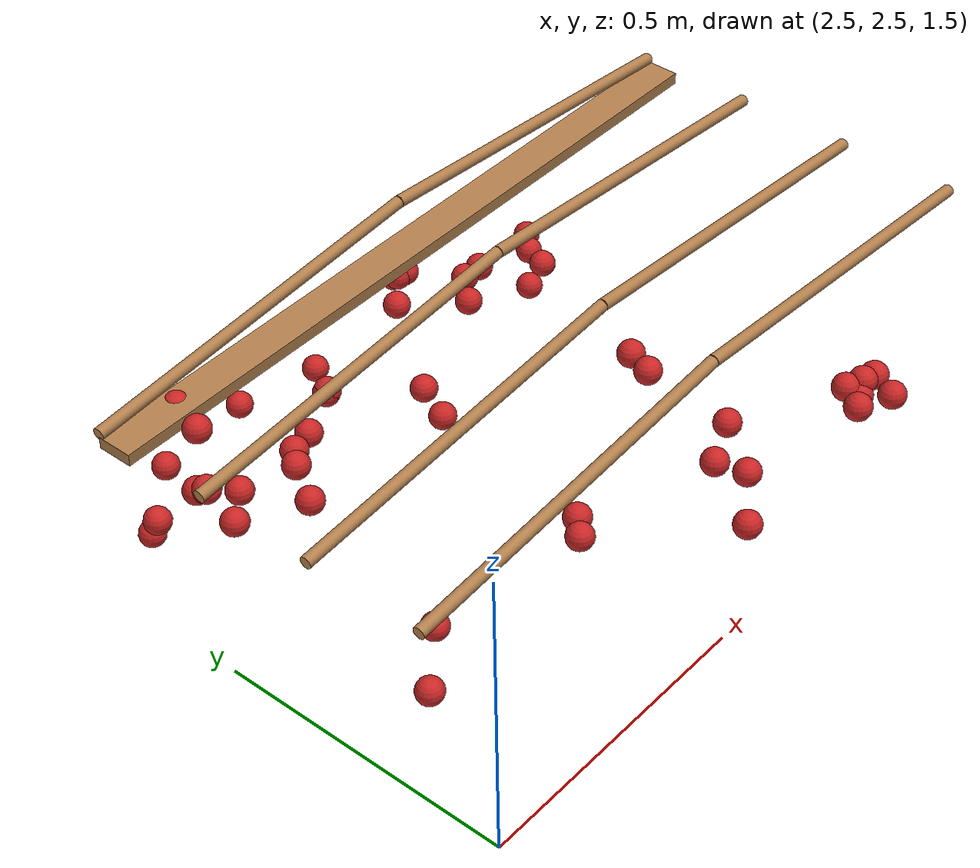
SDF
<sdf version="1.4">
 <model name="pergola">
  <link name="beam_18">
   <pose>3.125 3.2 1.81 0 0 0</pose>
   <collision name="collision"><geometry><box><size>1.25 0.06 0.02</size></box></geometry></collision>
   <visual name="visual">
    <geometry><box><size>1.25 0.06 0.02</size></box></geometry>
    <material><script><name>Gazebo/Wood</name></script></material>
   </visual>
   <inertial>
    <mass>5</mass>
    <inertia>
     <ixx>0.0016666666666666668</ixx>
     <ixy>0.0</ixy>
     <ixz>0.0</ixz>
     <iyy>0.6525416666666667</iyy>
     <iyz>0.0</iyz>
     <izz>0.6512083333333333</izz>
    </inertia>
   </inertial>
  </link>
  <link name="vine_122">
   <pose>2.8125 2.63 1.85 0 1.4909663410826592 0</pose>
   <collision name="collision">
    <geometry><cylinder><radius>0.01</radius><length>0.6269968101992226</length></cylinder></geometry>
   </collision>
   <visual name="visual">
    <geometry><cylinder><radius>0.01</radius><length>0.6269968101992226</length></cylinder></geometry>
    <material><script><name>Gazebo/WoodFloor</name></script></material>
   </visual>
   <inertial>
    <mass>5</mass>
    <inertia>
     <ixx>0.1639270833333333</ixx>
     <ixy>0.0</ixy>
     <ixz>0.0</ixz>
     <iyy>0.1639270833333333</iyy>
     <iyz>0.0</iyz>
     <izz>0.00025</izz>
    </inertia>
   </inertial>
  </link>
  <link name="vine_123">
   <pose>3.4375 2.63 1.85 0 -1.4909663410826592 0</pose>
   <collision name="collision">
    <geometry><cylinder><radius>0.01</radius><length>0.6269968101992226</length></cylinder></geometry>
   </collision>
   <visual name="visual">
    <geometry><cylinder><radius>0.01</radius><length>0.6269968101992226</length></cylinder></geometry>
    <material><script><name>Gazebo/WoodFloor</name></script></material>
   </visual>
   <inertial>
    <mass>5</mass>
    <inertia>
     <ixx>0.1639270833333333</ixx>
     <ixy>0.0</ixy>
     <ixz>0.0</ixz>
     <iyy>0.1639270833333333</iyy>
     <iyz>0.0</iyz>
     <izz>0.00025</izz>
    </inertia>
   </inertial>
  </link>
  <link name="vine_124">
   <pose>2.8125 2.83 1.85 0 1.4909663410826592 0</pose>
   <collision name="collision">
    <geometry><cylinder><radius>0.01</radius><length>0.6269968101992226</length></cylinder></geometry>
   </collision>
   <visual name="visual">
    <geometry><cylinder><radius>0.01</radius><length>0.6269968101992226</length></cylinder></geometry>
    <material><script><name>Gazebo/WoodFloor</name></script></material>
   </visual>
   <inertial>
    <mass>5</mass>
    <inertia>
     <ixx>0.1639270833333333</ixx>
     <ixy>0.0</ixy>
     <ixz>0.0</ixz>
     <iyy>0.1639270833333333</iyy>
     <iyz>0.0</iyz>
     <izz>0.00025</izz>
    </inertia>
   </inertial>
  </link>
  <link name="vine_125">
   <pose>3.4375 2.83 1.85 0 -1.4909663410826592 0</pose>
   <collision name="collision">
    <geometry><cylinder><radius>0.01</radius><length>0.6269968101992226</length></cylinder></geometry>
   </collision>
   <visual name="visual">
    <geometry><cylinder><radius>0.01</radius><length>0.6269968101992226</length></cylinder></geometry>
    <material><script><name>Gazebo/WoodFloor</name></script></material>
   </visual>
   <inertial>
    <mass>5</mass>
    <inertia>
     <ixx>0.1639270833333333</ixx>
     <ixy>0.0</ixy>
     <ixz>0.0</ixz>
     <iyy>0.1639270833333333</iyy>
     <iyz>0.0</iyz>
     <izz>0.00025</izz>
    </inertia>
   </inertial>
  </link>
  <link name="vine_126">
   <pose>2.8125 3.03 1.85 0 1.4909663410826592 0</pose>
   <collision name="collision">
    <geometry><cylinder><radius>0.01</radius><length>0.6269968101992226</length></cylinder></geometry>
   </collision>
   <visual name="visual">
    <geometry><cylinder><radius>0.01</radius><length>0.6269968101992226</length></cylinder></geometry>
    <material><script><name>Gazebo/WoodFloor</name></script></material>
   </visual>
   <inertial>
    <mass>5</mass>
    <inertia>
     <ixx>0.1639270833333333</ixx>
     <ixy>0.0</ixy>
     <ixz>0.0</ixz>
     <iyy>0.1639270833333333</iyy>
     <iyz>0.0</iyz>
     <izz>0.00025</izz>
    </inertia>
   </inertial>
  </link>
  <link name="vine_127">
   <pose>3.4375 3.03 1.85 0 -1.4909663410826592 0</pose>
   <collision name="collision">
    <geometry><cylinder><radius>0.01</radius><length>0.6269968101992226</length></cylinder></geometry>
   </collision>
   <visual name="visual">
    <geometry><cylinder><radius>0.01</radius><length>0.6269968101992226</length></cylinder></geometry>
    <material><script><name>Gazebo/WoodFloor</name></script></material>
   </visual>
   <inertial>
    <mass>5</mass>
    <inertia>
     <ixx>0.1639270833333333</ixx>
     <ixy>0.0</ixy>
     <ixz>0.0</ixz>
     <iyy>0.1639270833333333</iyy>
     <iyz>0.0</iyz>
     <izz>0.00025</izz>
    </inertia>
   </inertial>
  </link>
  <link name="vine_128">
   <pose>2.8125 3.23 1.85 0 1.4909663410826592 0</pose>
   <collision name="collision">
    <geometry><cylinder><radius>0.01</radius><length>0.6269968101992226</length></cylinder></geometry>
   </collision>
   <visual name="visual">
    <geometry><cylinder><radius>0.01</radius><length>0.6269968101992226</length></cylinder></geometry>
    <material><script><name>Gazebo/WoodFloor</name></script></material>
   </visual>
   <inertial>
    <mass>5</mass>
    <inertia>
     <ixx>0.1639270833333333</ixx>
     <ixy>0.0</ixy>
     <ixz>0.0</ixz>
     <iyy>0.1639270833333333</iyy>
     <iyz>0.0</iyz>
     <izz>0.00025</izz>
    </inertia>
   </inertial>
  </link>
  <link name="vine_129">
   <pose>3.4375 3.23 1.85 0 -1.4909663410826592 0</pose>
   <collision name="collision">
    <geometry><cylinder><radius>0.01</radius><length>0.6269968101992226</length></cylinder></geometry>
   </collision>
   <visual name="visual">
    <geometry><cylinder><radius>0.01</radius><length>0.6269968101992226</length></cylinder></geometry>
    <material><script><name>Gazebo/WoodFloor</name></script></material>
   </visual>
   <inertial>
    <mass>5</mass>
    <inertia>
     <ixx>0.1639270833333333</ixx>
     <ixy>0.0</ixy>
     <ixz>0.0</ixz>
     <iyy>0.1639270833333333</iyy>
     <iyz>0.0</iyz>
     <izz>0.00025</izz>
    </inertia>
   </inertial>
  </link>
  <link name="fruit_32">
   <pose>2.808159609067501 3.1338102263515895 1.6721600323383448 0 0 0</pose>
   <collision name="fruit_collision_32"><geometry><sphere><radius>0.022</radius></sphere></geometry></collision>
   <visual name="visual">
    <geometry><sphere><radius>0.022</radius></sphere></geometry>
    <material><script><name>Gazebo/Red</name></script></material>
   </visual>
   <inertial>
    <mass>0.05</mass>
    <inertia>
     <ixx>9.679999999999999e-06</ixx>
     <ixy>0.0</ixy>
     <ixz>0.0</ixz>
     <iyy>9.679999999999999e-06</iyy>
     <iyz>0.0</iyz>
     <izz>9.679999999999999e-06</izz>
    </inertia>
   </inertial>
   <sensor name="fruit_contact_32" type="contact">
    <plugin name="contact_plugin_32" filename="libcontact_plugin.so"/>
    <contact><collision>fruit_collision_32</collision><topic>fruit_contact_topic_32</topic></contact>
   </sensor>
  </link>
  <link name="fruit_89">
   <pose>3.119359254811818 3.2397912579139376 1.6721336779180653 0 0 0</pose>
   <collision name="fruit_collision_89"><geometry><sphere><radius>0.022</radius></sphere></geometry></collision>
   <visual name="visual">
    <geometry><sphere><radius>0.022</radius></sphere></geometry>
    <material><script><name>Gazebo/Red</name></script></material>
   </visual>
   <inertial>
    <mass>0.05</mass>
    <inertia>
     <ixx>9.679999999999999e-06</ixx>
     <ixy>0.0</ixy>
     <ixz>0.0</ixz>
     <iyy>9.679999999999999e-06</iyy>
     <iyz>0.0</iyz>
     <izz>9.679999999999999e-06</izz>
    </inertia>
   </inertial>
   <sensor name="fruit_contact_89" type="contact">
    <plugin name="contact_plugin_89" filename="libcontact_plugin.so"/>
    <contact><collision>fruit_collision_89</collision><topic>fruit_contact_topic_89</topic></contact>
   </sensor>
  </link>
  <link name="fruit_124">
   <pose>2.577887093972823 2.6891533017755216 1.610505593274216 0 0 0</pose>
   <collision name="fruit_collision_124"><geometry><sphere><radius>0.022</radius></sphere></geometry></collision>
   <visual name="visual">
    <geometry><sphere><radius>0.022</radius></sphere></geometry>
    <material><script><name>Gazebo/Red</name></script></material>
   </visual>
   <inertial>
    <mass>0.05</mass>
    <inertia>
     <ixx>9.679999999999999e-06</ixx>
     <ixy>0.0</ixy>
     <ixz>0.0</ixz>
     <iyy>9.679999999999999e-06</iyy>
     <iyz>0.0</iyz>
     <izz>9.679999999999999e-06</izz>
    </inertia>
   </inertial>
   <sensor name="fruit_contact_124" type="contact">
    <plugin name="contact_plugin_124" filename="libcontact_plugin.so"/>
    <contact><collision>fruit_collision_124</collision><topic>fruit_contact_topic_124</topic></contact>
   </sensor>
  </link>
  <link name="fruit_126">
   <pose>3.2724468561933024 2.4734322153932156 1.7780157370813416 0 0 0</pose>
   <collision name="fruit_collision_126"><geometry><sphere><radius>0.022</radius></sphere></geometry></collision>
   <visual name="visual">
    <geometry><sphere><radius>0.022</radius></sphere></geometry>
    <material><script><name>Gazebo/Red</name></script></material>
   </visual>
   <inertial>
    <mass>0.05</mass>
    <inertia>
     <ixx>9.679999999999999e-06</ixx>
     <ixy>0.0</ixy>
     <ixz>0.0</ixz>
     <iyy>9.679999999999999e-06</iyy>
     <iyz>0.0</iyz>
     <izz>9.679999999999999e-06</izz>
    </inertia>
   </inertial>
   <sensor name="fruit_contact_126" type="contact">
    <plugin name="contact_plugin_126" filename="libcontact_plugin.so"/>
    <contact><collision>fruit_collision_126</collision><topic>fruit_contact_topic_126</topic></contact>
   </sensor>
  </link>
  <link name="fruit_164">
   <pose>2.8742956785888296 3.35920691394664 1.5603556644123178 0 0 0</pose>
   <collision name="fruit_collision_164"><geometry><sphere><radius>0.022</radius></sphere></geometry></collision>
   <visual name="visual">
    <geometry><sphere><radius>0.022</radius></sphere></geometry>
    <material><script><name>Gazebo/Red</name></script></material>
   </visual>
   <inertial>
    <mass>0.05</mass>
    <inertia>
     <ixx>9.679999999999999e-06</ixx>
     <ixy>0.0</ixy>
     <ixz>0.0</ixz>
     <iyy>9.679999999999999e-06</iyy>
     <iyz>0.0</iyz>
     <izz>9.679999999999999e-06</izz>
    </inertia>
   </inertial>
   <sensor name="fruit_contact_164" type="contact">
    <plugin name="contact_plugin_164" filename="libcontact_plugin.so"/>
    <contact><collision>fruit_collision_164</collision><topic>fruit_contact_topic_164</topic></contact>
   </sensor>
  </link>
  <link name="fruit_194">
   <pose>3.1401471594713857 2.754772605987494 1.7814340354698146 0 0 0</pose>
   <collision name="fruit_collision_194"><geometry><sphere><radius>0.022</radius></sphere></geometry></collision>
   <visual name="visual">
    <geometry><sphere><radius>0.022</radius></sphere></geometry>
    <material><script><name>Gazebo/Red</name></script></material>
   </visual>
   <inertial>
    <mass>0.05</mass>
    <inertia>
     <ixx>9.679999999999999e-06</ixx>
     <ixy>0.0</ixy>
     <ixz>0.0</ixz>
     <iyy>9.679999999999999e-06</iyy>
     <iyz>0.0</iyz>
     <izz>9.679999999999999e-06</izz>
    </inertia>
   </inertial>
   <sensor name="fruit_contact_194" type="contact">
    <plugin name="contact_plugin_194" filename="libcontact_plugin.so"/>
    <contact><collision>fruit_collision_194</collision><topic>fruit_contact_topic_194</topic></contact>
   </sensor>
  </link>
  <link name="fruit_196">
   <pose>2.66489645507747 2.988358592392911 1.7244490365816565 0 0 0</pose>
   <collision name="fruit_collision_196"><geometry><sphere><radius>0.022</radius></sphere></geometry></collision>
   <visual name="visual">
    <geometry><sphere><radius>0.022</radius></sphere></geometry>
    <material><script><name>Gazebo/Red</name></script></material>
   </visual>
   <inertial>
    <mass>0.05</mass>
    <inertia>
     <ixx>9.679999999999999e-06</ixx>
     <ixy>0.0</ixy>
     <ixz>0.0</ixz>
     <iyy>9.679999999999999e-06</iyy>
     <iyz>0.0</iyz>
     <izz>9.679999999999999e-06</izz>
    </inertia>
   </inertial>
   <sensor name="fruit_contact_196" type="contact">
    <plugin name="contact_plugin_196" filename="libcontact_plugin.so"/>
    <contact><collision>fruit_collision_196</collision><topic>fruit_contact_topic_196</topic></contact>
   </sensor>
  </link>
  <link name="fruit_228">
   <pose>3.03315922586035 3.347421275399543 1.539117798216016 0 0 0</pose>
   <collision name="fruit_collision_228"><geometry><sphere><radius>0.022</radius></sphere></geometry></collision>
   <visual name="visual">
    <geometry><sphere><radius>0.022</radius></sphere></geometry>
    <material><script><name>Gazebo/Red</name></script></material>
   </visual>
   <inertial>
    <mass>0.05</mass>
    <inertia>
     <ixx>9.679999999999999e-06</ixx>
     <ixy>0.0</ixy>
     <ixz>0.0</ixz>
     <iyy>9.679999999999999e-06</iyy>
     <iyz>0.0</iyz>
     <izz>9.679999999999999e-06</izz>
    </inertia>
   </inertial>
   <sensor name="fruit_contact_228" type="contact">
    <plugin name="contact_plugin_228" filename="libcontact_plugin.so"/>
    <contact><collision>fruit_collision_228</collision><topic>fruit_contact_topic_228</topic></contact>
   </sensor>
  </link>
  <link name="fruit_267">
   <pose>2.982920281288055 3.0224788994690743 1.6506593641602456 0 0 0</pose>
   <collision name="fruit_collision_267"><geometry><sphere><radius>0.022</radius></sphere></geometry></collision>
   <visual name="visual">
    <geometry><sphere><radius>0.022</radius></sphere></geometry>
    <material><script><name>Gazebo/Red</name></script></material>
   </visual>
   <inertial>
    <mass>0.05</mass>
    <inertia>
     <ixx>9.679999999999999e-06</ixx>
     <ixy>0.0</ixy>
     <ixz>0.0</ixz>
     <iyy>9.679999999999999e-06</iyy>
     <iyz>0.0</iyz>
     <izz>9.679999999999999e-06</izz>
    </inertia>
   </inertial>
   <sensor name="fruit_contact_267" type="contact">
    <plugin name="contact_plugin_267" filename="libcontact_plugin.so"/>
    <contact><collision>fruit_collision_267</collision><topic>fruit_contact_topic_267</topic></contact>
   </sensor>
  </link>
  <link name="fruit_271">
   <pose>3.249426241510122 3.370930628776585 1.5856665070053395 0 0 0</pose>
   <collision name="fruit_collision_271"><geometry><sphere><radius>0.022</radius></sphere></geometry></collision>
   <visual name="visual">
    <geometry><sphere><radius>0.022</radius></sphere></geometry>
    <material><script><name>Gazebo/Red</name></script></material>
   </visual>
   <inertial>
    <mass>0.05</mass>
    <inertia>
     <ixx>9.679999999999999e-06</ixx>
     <ixy>0.0</ixy>
     <ixz>0.0</ixz>
     <iyy>9.679999999999999e-06</iyy>
     <iyz>0.0</iyz>
     <izz>9.679999999999999e-06</izz>
    </inertia>
   </inertial>
   <sensor name="fruit_contact_271" type="contact">
    <plugin name="contact_plugin_271" filename="libcontact_plugin.so"/>
    <contact><collision>fruit_collision_271</collision><topic>fruit_contact_topic_271</topic></contact>
   </sensor>
  </link>
  <link name="fruit_294">
   <pose>3.3787664850380033 3.1828757783705837 1.583433113037131 0 0 0</pose>
   <collision name="fruit_collision_294"><geometry><sphere><radius>0.022</radius></sphere></geometry></collision>
   <visual name="visual">
    <geometry><sphere><radius>0.022</radius></sphere></geometry>
    <material><script><name>Gazebo/Red</name></script></material>
   </visual>
   <inertial>
    <mass>0.05</mass>
    <inertia>
     <ixx>9.679999999999999e-06</ixx>
     <ixy>0.0</ixy>
     <ixz>0.0</ixz>
     <iyy>9.679999999999999e-06</iyy>
     <iyz>0.0</iyz>
     <izz>9.679999999999999e-06</izz>
    </inertia>
   </inertial>
   <sensor name="fruit_contact_294" type="contact">
    <plugin name="contact_plugin_294" filename="libcontact_plugin.so"/>
    <contact><collision>fruit_collision_294</collision><topic>fruit_contact_topic_294</topic></contact>
   </sensor>
  </link>
  <link name="fruit_299">
   <pose>2.5752046906343913 3.0501656213969257 1.7110261043534212 0 0 0</pose>
   <collision name="fruit_collision_299"><geometry><sphere><radius>0.022</radius></sphere></geometry></collision>
   <visual name="visual">
    <geometry><sphere><radius>0.022</radius></sphere></geometry>
    <material><script><name>Gazebo/Red</name></script></material>
   </visual>
   <inertial>
    <mass>0.05</mass>
    <inertia>
     <ixx>9.679999999999999e-06</ixx>
     <ixy>0.0</ixy>
     <ixz>0.0</ixz>
     <iyy>9.679999999999999e-06</iyy>
     <iyz>0.0</iyz>
     <izz>9.679999999999999e-06</izz>
    </inertia>
   </inertial>
   <sensor name="fruit_contact_299" type="contact">
    <plugin name="contact_plugin_299" filename="libcontact_plugin.so"/>
    <contact><collision>fruit_collision_299</collision><topic>fruit_contact_topic_299</topic></contact>
   </sensor>
  </link>
  <link name="fruit_309">
   <pose>2.859185722076814 2.654765437106848 1.7144844020442256 0 0 0</pose>
   <collision name="fruit_collision_309"><geometry><sphere><radius>0.022</radius></sphere></geometry></collision>
   <visual name="visual">
    <geometry><sphere><radius>0.022</radius></sphere></geometry>
    <material><script><name>Gazebo/Red</name></script></material>
   </visual>
   <inertial>
    <mass>0.05</mass>
    <inertia>
     <ixx>9.679999999999999e-06</ixx>
     <ixy>0.0</ixy>
     <ixz>0.0</ixz>
     <iyy>9.679999999999999e-06</iyy>
     <iyz>0.0</iyz>
     <izz>9.679999999999999e-06</izz>
    </inertia>
   </inertial>
   <sensor name="fruit_contact_309" type="contact">
    <plugin name="contact_plugin_309" filename="libcontact_plugin.so"/>
    <contact><collision>fruit_collision_309</collision><topic>fruit_contact_topic_309</topic></contact>
   </sensor>
  </link>
  <link name="fruit_314">
   <pose>3.206085768693456 3.164343725090585 1.6652165347343049 0 0 0</pose>
   <collision name="fruit_collision_314"><geometry><sphere><radius>0.022</radius></sphere></geometry></collision>
   <visual name="visual">
    <geometry><sphere><radius>0.022</radius></sphere></geometry>
    <material><script><name>Gazebo/Red</name></script></material>
   </visual>
   <inertial>
    <mass>0.05</mass>
    <inertia>
     <ixx>9.679999999999999e-06</ixx>
     <ixy>0.0</ixy>
     <ixz>0.0</ixz>
     <iyy>9.679999999999999e-06</iyy>
     <iyz>0.0</iyz>
     <izz>9.679999999999999e-06</izz>
    </inertia>
   </inertial>
   <sensor name="fruit_contact_314" type="contact">
    <plugin name="contact_plugin_314" filename="libcontact_plugin.so"/>
    <contact><collision>fruit_collision_314</collision><topic>fruit_contact_topic_314</topic></contact>
   </sensor>
  </link>
  <link name="fruit_317">
   <pose>3.0711412216538347 2.579988015113837 1.750290273771698 0 0 0</pose>
   <collision name="fruit_collision_317"><geometry><sphere><radius>0.022</radius></sphere></geometry></collision>
   <visual name="visual">
    <geometry><sphere><radius>0.022</radius></sphere></geometry>
    <material><script><name>Gazebo/Red</name></script></material>
   </visual>
   <inertial>
    <mass>0.05</mass>
    <inertia>
     <ixx>9.679999999999999e-06</ixx>
     <ixy>0.0</ixy>
     <ixz>0.0</ixz>
     <iyy>9.679999999999999e-06</iyy>
     <iyz>0.0</iyz>
     <izz>9.679999999999999e-06</izz>
    </inertia>
   </inertial>
   <sensor name="fruit_contact_317" type="contact">
    <plugin name="contact_plugin_317" filename="libcontact_plugin.so"/>
    <contact><collision>fruit_collision_317</collision><topic>fruit_contact_topic_317</topic></contact>
   </sensor>
  </link>
  <link name="fruit_338">
   <pose>2.5595967321014608 3.2026239883638943 1.6327785355676203 0 0 0</pose>
   <collision name="fruit_collision_338"><geometry><sphere><radius>0.022</radius></sphere></geometry></collision>
   <visual name="visual">
    <geometry><sphere><radius>0.022</radius></sphere></geometry>
    <material><script><name>Gazebo/Red</name></script></material>
   </visual>
   <inertial>
    <mass>0.05</mass>
    <inertia>
     <ixx>9.679999999999999e-06</ixx>
     <ixy>0.0</ixy>
     <ixz>0.0</ixz>
     <iyy>9.679999999999999e-06</iyy>
     <iyz>0.0</iyz>
     <izz>9.679999999999999e-06</izz>
    </inertia>
   </inertial>
   <sensor name="fruit_contact_338" type="contact">
    <plugin name="contact_plugin_338" filename="libcontact_plugin.so"/>
    <contact><collision>fruit_collision_338</collision><topic>fruit_contact_topic_338</topic></contact>
   </sensor>
  </link>
  <link name="fruit_342">
   <pose>3.027246353458113 2.4880022202932865 1.7152449940105845 0 0 0</pose>
   <collision name="fruit_collision_342"><geometry><sphere><radius>0.022</radius></sphere></geometry></collision>
   <visual name="visual">
    <geometry><sphere><radius>0.022</radius></sphere></geometry>
    <material><script><name>Gazebo/Red</name></script></material>
   </visual>
   <inertial>
    <mass>0.05</mass>
    <inertia>
     <ixx>9.679999999999999e-06</ixx>
     <ixy>0.0</ixy>
     <ixz>0.0</ixz>
     <iyy>9.679999999999999e-06</iyy>
     <iyz>0.0</iyz>
     <izz>9.679999999999999e-06</izz>
    </inertia>
   </inertial>
   <sensor name="fruit_contact_342" type="contact">
    <plugin name="contact_plugin_342" filename="libcontact_plugin.so"/>
    <contact><collision>fruit_collision_342</collision><topic>fruit_contact_topic_342</topic></contact>
   </sensor>
  </link>
  <link name="fruit_356">
   <pose>3.284882071787017 3.209868172731629 1.6651837474109423 0 0 0</pose>
   <collision name="fruit_collision_356"><geometry><sphere><radius>0.022</radius></sphere></geometry></collision>
   <visual name="visual">
    <geometry><sphere><radius>0.022</radius></sphere></geometry>
    <material><script><name>Gazebo/Red</name></script></material>
   </visual>
   <inertial>
    <mass>0.05</mass>
    <inertia>
     <ixx>9.679999999999999e-06</ixx>
     <ixy>0.0</ixy>
     <ixz>0.0</ixz>
     <iyy>9.679999999999999e-06</iyy>
     <iyz>0.0</iyz>
     <izz>9.679999999999999e-06</izz>
    </inertia>
   </inertial>
   <sensor name="fruit_contact_356" type="contact">
    <plugin name="contact_plugin_356" filename="libcontact_plugin.so"/>
    <contact><collision>fruit_collision_356</collision><topic>fruit_contact_topic_356</topic></contact>
   </sensor>
  </link>
  <link name="fruit_357">
   <pose>2.5912294461289496 3.2597329167662825 1.5483977935840239 0 0 0</pose>
   <collision name="fruit_collision_357"><geometry><sphere><radius>0.022</radius></sphere></geometry></collision>
   <visual name="visual">
    <geometry><sphere><radius>0.022</radius></sphere></geometry>
    <material><script><name>Gazebo/Red</name></script></material>
   </visual>
   <inertial>
    <mass>0.05</mass>
    <inertia>
     <ixx>9.679999999999999e-06</ixx>
     <ixy>0.0</ixy>
     <ixz>0.0</ixz>
     <iyy>9.679999999999999e-06</iyy>
     <iyz>0.0</iyz>
     <izz>9.679999999999999e-06</izz>
    </inertia>
   </inertial>
   <sensor name="fruit_contact_357" type="contact">
    <plugin name="contact_plugin_357" filename="libcontact_plugin.so"/>
    <contact><collision>fruit_collision_357</collision><topic>fruit_contact_topic_357</topic></contact>
   </sensor>
  </link>
  <link name="fruit_377">
   <pose>3.163740244673421 2.8045951229159445 1.7726856608993806 0 0 0</pose>
   <collision name="fruit_collision_377"><geometry><sphere><radius>0.022</radius></sphere></geometry></collision>
   <visual name="visual">
    <geometry><sphere><radius>0.022</radius></sphere></geometry>
    <material><script><name>Gazebo/Red</name></script></material>
   </visual>
   <inertial>
    <mass>0.05</mass>
    <inertia>
     <ixx>9.679999999999999e-06</ixx>
     <ixy>0.0</ixy>
     <ixz>0.0</ixz>
     <iyy>9.679999999999999e-06</iyy>
     <iyz>0.0</iyz>
     <izz>9.679999999999999e-06</izz>
    </inertia>
   </inertial>
   <sensor name="fruit_contact_377" type="contact">
    <plugin name="contact_plugin_377" filename="libcontact_plugin.so"/>
    <contact><collision>fruit_collision_377</collision><topic>fruit_contact_topic_377</topic></contact>
   </sensor>
  </link>
  <link name="fruit_385">
   <pose>2.628692118171284 3.2107093924792602 1.804247309228987 0 0 0</pose>
   <collision name="fruit_collision_385"><geometry><sphere><radius>0.022</radius></sphere></geometry></collision>
   <visual name="visual">
    <geometry><sphere><radius>0.022</radius></sphere></geometry>
    <material><script><name>Gazebo/Red</name></script></material>
   </visual>
   <inertial>
    <mass>0.05</mass>
    <inertia>
     <ixx>9.679999999999999e-06</ixx>
     <ixy>0.0</ixy>
     <ixz>0.0</ixz>
     <iyy>9.679999999999999e-06</iyy>
     <iyz>0.0</iyz>
     <izz>9.679999999999999e-06</izz>
    </inertia>
   </inertial>
   <sensor name="fruit_contact_385" type="contact">
    <plugin name="contact_plugin_385" filename="libcontact_plugin.so"/>
    <contact><collision>fruit_collision_385</collision><topic>fruit_contact_topic_385</topic></contact>
   </sensor>
  </link>
  <link name="fruit_386">
   <pose>2.6081575224713243 3.1468604640590176 1.8090388779571036 0 0 0</pose>
   <collision name="fruit_collision_386"><geometry><sphere><radius>0.022</radius></sphere></geometry></collision>
   <visual name="visual">
    <geometry><sphere><radius>0.022</radius></sphere></geometry>
    <material><script><name>Gazebo/Red</name></script></material>
   </visual>
   <inertial>
    <mass>0.05</mass>
    <inertia>
     <ixx>9.679999999999999e-06</ixx>
     <ixy>0.0</ixy>
     <ixz>0.0</ixz>
     <iyy>9.679999999999999e-06</iyy>
     <iyz>0.0</iyz>
     <izz>9.679999999999999e-06</izz>
    </inertia>
   </inertial>
   <sensor name="fruit_contact_386" type="contact">
    <plugin name="contact_plugin_386" filename="libcontact_plugin.so"/>
    <contact><collision>fruit_collision_386</collision><topic>fruit_contact_topic_386</topic></contact>
   </sensor>
  </link>
  <link name="fruit_407">
   <pose>2.6348533043084816 3.101936458400627 1.697859493942875 0 0 0</pose>
   <collision name="fruit_collision_407"><geometry><sphere><radius>0.022</radius></sphere></geometry></collision>
   <visual name="visual">
    <geometry><sphere><radius>0.022</radius></sphere></geometry>
    <material><script><name>Gazebo/Red</name></script></material>
   </visual>
   <inertial>
    <mass>0.05</mass>
    <inertia>
     <ixx>9.679999999999999e-06</ixx>
     <ixy>0.0</ixy>
     <ixz>0.0</ixz>
     <iyy>9.679999999999999e-06</iyy>
     <iyz>0.0</iyz>
     <izz>9.679999999999999e-06</izz>
    </inertia>
   </inertial>
   <sensor name="fruit_contact_407" type="contact">
    <plugin name="contact_plugin_407" filename="libcontact_plugin.so"/>
    <contact><collision>fruit_collision_407</collision><topic>fruit_contact_topic_407</topic></contact>
   </sensor>
  </link>
  <link name="fruit_416">
   <pose>3.300544502601504 2.513681414146046 1.775457767778198 0 0 0</pose>
   <collision name="fruit_collision_416"><geometry><sphere><radius>0.022</radius></sphere></geometry></collision>
   <visual name="visual">
    <geometry><sphere><radius>0.022</radius></sphere></geometry>
    <material><script><name>Gazebo/Red</name></script></material>
   </visual>
   <inertial>
    <mass>0.05</mass>
    <inertia>
     <ixx>9.679999999999999e-06</ixx>
     <ixy>0.0</ixy>
     <ixz>0.0</ixz>
     <iyy>9.679999999999999e-06</iyy>
     <iyz>0.0</iyz>
     <izz>9.679999999999999e-06</izz>
    </inertia>
   </inertial>
   <sensor name="fruit_contact_416" type="contact">
    <plugin name="contact_plugin_416" filename="libcontact_plugin.so"/>
    <contact><collision>fruit_collision_416</collision><topic>fruit_contact_topic_416</topic></contact>
   </sensor>
  </link>
  <link name="fruit_424">
   <pose>2.678769147323681 2.7695324789047215 1.602869658023241 0 0 0</pose>
   <collision name="fruit_collision_424"><geometry><sphere><radius>0.022</radius></sphere></geometry></collision>
   <visual name="visual">
    <geometry><sphere><radius>0.022</radius></sphere></geometry>
    <material><script><name>Gazebo/Red</name></script></material>
   </visual>
   <inertial>
    <mass>0.05</mass>
    <inertia>
     <ixx>9.679999999999999e-06</ixx>
     <ixy>0.0</ixy>
     <ixz>0.0</ixz>
     <iyy>9.679999999999999e-06</iyy>
     <iyz>0.0</iyz>
     <izz>9.679999999999999e-06</izz>
    </inertia>
   </inertial>
   <sensor name="fruit_contact_424" type="contact">
    <plugin name="contact_plugin_424" filename="libcontact_plugin.so"/>
    <contact><collision>fruit_collision_424</collision><topic>fruit_contact_topic_424</topic></contact>
   </sensor>
  </link>
  <link name="fruit_433">
   <pose>2.7080428519028397 3.058064651858614 1.721299512541927 0 0 0</pose>
   <collision name="fruit_collision_433"><geometry><sphere><radius>0.022</radius></sphere></geometry></collision>
   <visual name="visual">
    <geometry><sphere><radius>0.022</radius></sphere></geometry>
    <material><script><name>Gazebo/Red</name></script></material>
   </visual>
   <inertial>
    <mass>0.05</mass>
    <inertia>
     <ixx>9.679999999999999e-06</ixx>
     <ixy>0.0</ixy>
     <ixz>0.0</ixz>
     <iyy>9.679999999999999e-06</iyy>
     <iyz>0.0</iyz>
     <izz>9.679999999999999e-06</izz>
    </inertia>
   </inertial>
   <sensor name="fruit_contact_433" type="contact">
    <plugin name="contact_plugin_433" filename="libcontact_plugin.so"/>
    <contact><collision>fruit_collision_433</collision><topic>fruit_contact_topic_433</topic></contact>
   </sensor>
  </link>
  <link name="fruit_436">
   <pose>2.9098867295592585 3.1938572716544322 1.655933978760757 0 0 0</pose>
   <collision name="fruit_collision_436"><geometry><sphere><radius>0.022</radius></sphere></geometry></collision>
   <visual name="visual">
    <geometry><sphere><radius>0.022</radius></sphere></geometry>
    <material><script><name>Gazebo/Red</name></script></material>
   </visual>
   <inertial>
    <mass>0.05</mass>
    <inertia>
     <ixx>9.679999999999999e-06</ixx>
     <ixy>0.0</ixy>
     <ixz>0.0</ixz>
     <iyy>9.679999999999999e-06</iyy>
     <iyz>0.0</iyz>
     <izz>9.679999999999999e-06</izz>
    </inertia>
   </inertial>
   <sensor name="fruit_contact_436" type="contact">
    <plugin name="contact_plugin_436" filename="libcontact_plugin.so"/>
    <contact><collision>fruit_collision_436</collision><topic>fruit_contact_topic_436</topic></contact>
   </sensor>
  </link>
  <link name="fruit_462">
   <pose>2.9074755380793085 3.1940004146501497 1.6526665994878524 0 0 0</pose>
   <collision name="fruit_collision_462"><geometry><sphere><radius>0.022</radius></sphere></geometry></collision>
   <visual name="visual">
    <geometry><sphere><radius>0.022</radius></sphere></geometry>
    <material><script><name>Gazebo/Red</name></script></material>
   </visual>
   <inertial>
    <mass>0.05</mass>
    <inertia>
     <ixx>9.679999999999999e-06</ixx>
     <ixy>0.0</ixy>
     <ixz>0.0</ixz>
     <iyy>9.679999999999999e-06</iyy>
     <iyz>0.0</iyz>
     <izz>9.679999999999999e-06</izz>
    </inertia>
   </inertial>
   <sensor name="fruit_contact_462" type="contact">
    <plugin name="contact_plugin_462" filename="libcontact_plugin.so"/>
    <contact><collision>fruit_collision_462</collision><topic>fruit_contact_topic_462</topic></contact>
   </sensor>
  </link>
  <link name="fruit_529">
   <pose>3.3623286054911907 2.503662167105799 1.763597460067183 0 0 0</pose>
   <collision name="fruit_collision_529"><geometry><sphere><radius>0.022</radius></sphere></geometry></collision>
   <visual name="visual">
    <geometry><sphere><radius>0.022</radius></sphere></geometry>
    <material><script><name>Gazebo/Red</name></script></material>
   </visual>
   <inertial>
    <mass>0.05</mass>
    <inertia>
     <ixx>9.679999999999999e-06</ixx>
     <ixy>0.0</ixy>
     <ixz>0.0</ixz>
     <iyy>9.679999999999999e-06</iyy>
     <iyz>0.0</iyz>
     <izz>9.679999999999999e-06</izz>
    </inertia>
   </inertial>
   <sensor name="fruit_contact_529" type="contact">
    <plugin name="contact_plugin_529" filename="libcontact_plugin.so"/>
    <contact><collision>fruit_collision_529</collision><topic>fruit_contact_topic_529</topic></contact>
   </sensor>
  </link>
  <link name="fruit_558">
   <pose>3.4607402898611372 3.2524925235874647 1.5755688764979114 0 0 0</pose>
   <collision name="fruit_collision_558"><geometry><sphere><radius>0.022</radius></sphere></geometry></collision>
   <visual name="visual">
    <geometry><sphere><radius>0.022</radius></sphere></geometry>
    <material><script><name>Gazebo/Red</name></script></material>
   </visual>
   <inertial>
    <mass>0.05</mass>
    <inertia>
     <ixx>9.679999999999999e-06</ixx>
     <ixy>0.0</ixy>
     <ixz>0.0</ixz>
     <iyy>9.679999999999999e-06</iyy>
     <iyz>0.0</iyz>
     <izz>9.679999999999999e-06</izz>
    </inertia>
   </inertial>
   <sensor name="fruit_contact_558" type="contact">
    <plugin name="contact_plugin_558" filename="libcontact_plugin.so"/>
    <contact><collision>fruit_collision_558</collision><topic>fruit_contact_topic_558</topic></contact>
   </sensor>
  </link>
  <link name="fruit_571">
   <pose>2.597485503289688 3.1517387054693717 1.6951649719752204 0 0 0</pose>
   <collision name="fruit_collision_571"><geometry><sphere><radius>0.022</radius></sphere></geometry></collision>
   <visual name="visual">
    <geometry><sphere><radius>0.022</radius></sphere></geometry>
    <material><script><name>Gazebo/Red</name></script></material>
   </visual>
   <inertial>
    <mass>0.05</mass>
    <inertia>
     <ixx>9.679999999999999e-06</ixx>
     <ixy>0.0</ixy>
     <ixz>0.0</ixz>
     <iyy>9.679999999999999e-06</iyy>
     <iyz>0.0</iyz>
     <izz>9.679999999999999e-06</izz>
    </inertia>
   </inertial>
   <sensor name="fruit_contact_571" type="contact">
    <plugin name="contact_plugin_571" filename="libcontact_plugin.so"/>
    <contact><collision>fruit_collision_571</collision><topic>fruit_contact_topic_571</topic></contact>
   </sensor>
  </link>
  <link name="fruit_580">
   <pose>2.8871528588754685 2.6820762075509372 1.7144594112039535 0 0 0</pose>
   <collision name="fruit_collision_580"><geometry><sphere><radius>0.022</radius></sphere></geometry></collision>
   <visual name="visual">
    <geometry><sphere><radius>0.022</radius></sphere></geometry>
    <material><script><name>Gazebo/Red</name></script></material>
   </visual>
   <inertial>
    <mass>0.05</mass>
    <inertia>
     <ixx>9.679999999999999e-06</ixx>
     <ixy>0.0</ixy>
     <ixz>0.0</ixz>
     <iyy>9.679999999999999e-06</iyy>
     <iyz>0.0</iyz>
     <izz>9.679999999999999e-06</izz>
    </inertia>
   </inertial>
   <sensor name="fruit_contact_580" type="contact">
    <plugin name="contact_plugin_580" filename="libcontact_plugin.so"/>
    <contact><collision>fruit_collision_580</collision><topic>fruit_contact_topic_580</topic></contact>
   </sensor>
  </link>
  <link name="fruit_591">
   <pose>2.658032592555321 3.2906759484587775 1.6203277571243377 0 0 0</pose>
   <collision name="fruit_collision_591"><geometry><sphere><radius>0.022</radius></sphere></geometry></collision>
   <visual name="visual">
    <geometry><sphere><radius>0.022</radius></sphere></geometry>
    <material><script><name>Gazebo/Red</name></script></material>
   </visual>
   <inertial>
    <mass>0.05</mass>
    <inertia>
     <ixx>9.679999999999999e-06</ixx>
     <ixy>0.0</ixy>
     <ixz>0.0</ixz>
     <iyy>9.679999999999999e-06</iyy>
     <iyz>0.0</iyz>
     <izz>9.679999999999999e-06</izz>
    </inertia>
   </inertial>
   <sensor name="fruit_contact_591" type="contact">
    <plugin name="contact_plugin_591" filename="libcontact_plugin.so"/>
    <contact><collision>fruit_collision_591</collision><topic>fruit_contact_topic_591</topic></contact>
   </sensor>
  </link>
  <link name="fruit_605">
   <pose>3.122814296891686 2.557293635598088 1.7066845132198853 0 0 0</pose>
   <collision name="fruit_collision_605"><geometry><sphere><radius>0.022</radius></sphere></geometry></collision>
   <visual name="visual">
    <geometry><sphere><radius>0.022</radius></sphere></geometry>
    <material><script><name>Gazebo/Red</name></script></material>
   </visual>
   <inertial>
    <mass>0.05</mass>
    <inertia>
     <ixx>9.679999999999999e-06</ixx>
     <ixy>0.0</ixy>
     <ixz>0.0</ixz>
     <iyy>9.679999999999999e-06</iyy>
     <iyz>0.0</iyz>
     <izz>9.679999999999999e-06</izz>
    </inertia>
   </inertial>
   <sensor name="fruit_contact_605" type="contact">
    <plugin name="contact_plugin_605" filename="libcontact_plugin.so"/>
    <contact><collision>fruit_collision_605</collision><topic>fruit_contact_topic_605</topic></contact>
   </sensor>
  </link>
  <link name="fruit_611">
   <pose>2.5975875034862623 3.1296938372938903 1.7104978740039525 0 0 0</pose>
   <collision name="fruit_collision_611"><geometry><sphere><radius>0.022</radius></sphere></geometry></collision>
   <visual name="visual">
    <geometry><sphere><radius>0.022</radius></sphere></geometry>
    <material><script><name>Gazebo/Red</name></script></material>
   </visual>
   <inertial>
    <mass>0.05</mass>
    <inertia>
     <ixx>9.679999999999999e-06</ixx>
     <ixy>0.0</ixy>
     <ixz>0.0</ixz>
     <iyy>9.679999999999999e-06</iyy>
     <iyz>0.0</iyz>
     <izz>9.679999999999999e-06</izz>
    </inertia>
   </inertial>
   <sensor name="fruit_contact_611" type="contact">
    <plugin name="contact_plugin_611" filename="libcontact_plugin.so"/>
    <contact><collision>fruit_collision_611</collision><topic>fruit_contact_topic_611</topic></contact>
   </sensor>
  </link>
  <link name="fruit_612">
   <pose>3.1610608594745497 2.623208654529296 1.7392641118002485 0 0 0</pose>
   <collision name="fruit_collision_612"><geometry><sphere><radius>0.022</radius></sphere></geometry></collision>
   <visual name="visual">
    <geometry><sphere><radius>0.022</radius></sphere></geometry>
    <material><script><name>Gazebo/Red</name></script></material>
   </visual>
   <inertial>
    <mass>0.05</mass>
    <inertia>
     <ixx>9.679999999999999e-06</ixx>
     <ixy>0.0</ixy>
     <ixz>0.0</ixz>
     <iyy>9.679999999999999e-06</iyy>
     <iyz>0.0</iyz>
     <izz>9.679999999999999e-06</izz>
    </inertia>
   </inertial>
   <sensor name="fruit_contact_612" type="contact">
    <plugin name="contact_plugin_612" filename="libcontact_plugin.so"/>
    <contact><collision>fruit_collision_612</collision><topic>fruit_contact_topic_612</topic></contact>
   </sensor>
  </link>
  <link name="fruit_626">
   <pose>3.250011084111067 3.210844008919482 1.6640800374835791 0 0 0</pose>
   <collision name="fruit_collision_626"><geometry><sphere><radius>0.022</radius></sphere></geometry></collision>
   <visual name="visual">
    <geometry><sphere><radius>0.022</radius></sphere></geometry>
    <material><script><name>Gazebo/Red</name></script></material>
   </visual>
   <inertial>
    <mass>0.05</mass>
    <inertia>
     <ixx>9.679999999999999e-06</ixx>
     <ixy>0.0</ixy>
     <ixz>0.0</ixz>
     <iyy>9.679999999999999e-06</iyy>
     <iyz>0.0</iyz>
     <izz>9.679999999999999e-06</izz>
    </inertia>
   </inertial>
   <sensor name="fruit_contact_626" type="contact">
    <plugin name="contact_plugin_626" filename="libcontact_plugin.so"/>
    <contact><collision>fruit_collision_626</collision><topic>fruit_contact_topic_626</topic></contact>
   </sensor>
  </link>
  <link name="fruit_692">
   <pose>3.4471613352354846 3.21199714645815 1.5750849733308672 0 0 0</pose>
   <collision name="fruit_collision_692"><geometry><sphere><radius>0.022</radius></sphere></geometry></collision>
   <visual name="visual">
    <geometry><sphere><radius>0.022</radius></sphere></geometry>
    <material><script><name>Gazebo/Red</name></script></material>
   </visual>
   <inertial>
    <mass>0.05</mass>
    <inertia>
     <ixx>9.679999999999999e-06</ixx>
     <ixy>0.0</ixy>
     <ixz>0.0</ixz>
     <iyy>9.679999999999999e-06</iyy>
     <iyz>0.0</iyz>
     <izz>9.679999999999999e-06</izz>
    </inertia>
   </inertial>
   <sensor name="fruit_contact_692" type="contact">
    <plugin name="contact_plugin_692" filename="libcontact_plugin.so"/>
    <contact><collision>fruit_collision_692</collision><topic>fruit_contact_topic_692</topic></contact>
   </sensor>
  </link>
  <link name="fruit_696">
   <pose>3.4552087009581554 3.217766071533555 1.5670155074603547 0 0 0</pose>
   <collision name="fruit_collision_696"><geometry><sphere><radius>0.022</radius></sphere></geometry></collision>
   <visual name="visual">
    <geometry><sphere><radius>0.022</radius></sphere></geometry>
    <material><script><name>Gazebo/Red</name></script></material>
   </visual>
   <inertial>
    <mass>0.05</mass>
    <inertia>
     <ixx>9.679999999999999e-06</ixx>
     <ixy>0.0</ixy>
     <ixz>0.0</ixz>
     <iyy>9.679999999999999e-06</iyy>
     <iyz>0.0</iyz>
     <izz>9.679999999999999e-06</izz>
    </inertia>
   </inertial>
   <sensor name="fruit_contact_696" type="contact">
    <plugin name="contact_plugin_696" filename="libcontact_plugin.so"/>
    <contact><collision>fruit_collision_696</collision><topic>fruit_contact_topic_696</topic></contact>
   </sensor>
  </link>
  <link name="fruit_698">
   <pose>3.3525577474105583 2.4648133653788853 1.7527880294480975 0 0 0</pose>
   <collision name="fruit_collision_698"><geometry><sphere><radius>0.022</radius></sphere></geometry></collision>
   <visual name="visual">
    <geometry><sphere><radius>0.022</radius></sphere></geometry>
    <material><script><name>Gazebo/Red</name></script></material>
   </visual>
   <inertial>
    <mass>0.05</mass>
    <inertia>
     <ixx>9.679999999999999e-06</ixx>
     <ixy>0.0</ixy>
     <ixz>0.0</ixz>
     <iyy>9.679999999999999e-06</iyy>
     <iyz>0.0</iyz>
     <izz>9.679999999999999e-06</izz>
    </inertia>
   </inertial>
   <sensor name="fruit_contact_698" type="contact">
    <plugin name="contact_plugin_698" filename="libcontact_plugin.so"/>
    <contact><collision>fruit_collision_698</collision><topic>fruit_contact_topic_698</topic></contact>
   </sensor>
  </link>
  <link name="fruit_719">
   <pose>2.730522753807994 3.0835715817030223 1.7201092563527458 0 0 0</pose>
   <collision name="fruit_collision_719"><geometry><sphere><radius>0.022</radius></sphere></geometry></collision>
   <visual name="visual">
    <geometry><sphere><radius>0.022</radius></sphere></geometry>
    <material><script><name>Gazebo/Red</name></script></material>
   </visual>
   <inertial>
    <mass>0.05</mass>
    <inertia>
     <ixx>9.679999999999999e-06</ixx>
     <ixy>0.0</ixy>
     <ixz>0.0</ixz>
     <iyy>9.679999999999999e-06</iyy>
     <iyz>0.0</iyz>
     <izz>9.679999999999999e-06</izz>
    </inertia>
   </inertial>
   <sensor name="fruit_contact_719" type="contact">
    <plugin name="contact_plugin_719" filename="libcontact_plugin.so"/>
    <contact><collision>fruit_collision_719</collision><topic>fruit_contact_topic_719</topic></contact>
   </sensor>
  </link>
  <link name="fruit_732">
   <pose>3.486670558352311 3.2795778621991536 1.5810923765969946 0 0 0</pose>
   <collision name="fruit_collision_732"><geometry><sphere><radius>0.022</radius></sphere></geometry></collision>
   <visual name="visual">
    <geometry><sphere><radius>0.022</radius></sphere></geometry>
    <material><script><name>Gazebo/Red</name></script></material>
   </visual>
   <inertial>
    <mass>0.05</mass>
    <inertia>
     <ixx>9.679999999999999e-06</ixx>
     <ixy>0.0</ixy>
     <ixz>0.0</ixz>
     <iyy>9.679999999999999e-06</iyy>
     <iyz>0.0</iyz>
     <izz>9.679999999999999e-06</izz>
    </inertia>
   </inertial>
   <sensor name="fruit_contact_732" type="contact">
    <plugin name="contact_plugin_732" filename="libcontact_plugin.so"/>
    <contact><collision>fruit_collision_732</collision><topic>fruit_contact_topic_732</topic></contact>
   </sensor>
  </link>
  <link name="fruit_747">
   <pose>3.016812131683353 3.0913009671771574 1.6458401980953878 0 0 0</pose>
   <collision name="fruit_collision_747"><geometry><sphere><radius>0.022</radius></sphere></geometry></collision>
   <visual name="visual">
    <geometry><sphere><radius>0.022</radius></sphere></geometry>
    <material><script><name>Gazebo/Red</name></script></material>
   </visual>
   <inertial>
    <mass>0.05</mass>
    <inertia>
     <ixx>9.679999999999999e-06</ixx>
     <ixy>0.0</ixy>
     <ixz>0.0</ixz>
     <iyy>9.679999999999999e-06</iyy>
     <iyz>0.0</iyz>
     <izz>9.679999999999999e-06</izz>
    </inertia>
   </inertial>
   <sensor name="fruit_contact_747" type="contact">
    <plugin name="contact_plugin_747" filename="libcontact_plugin.so"/>
    <contact><collision>fruit_collision_747</collision><topic>fruit_contact_topic_747</topic></contact>
   </sensor>
  </link>
  <link name="fruit_755">
   <pose>3.310187639097344 2.4963244311977273 1.762995990468927 0 0 0</pose>
   <collision name="fruit_collision_755"><geometry><sphere><radius>0.022</radius></sphere></geometry></collision>
   <visual name="visual">
    <geometry><sphere><radius>0.022</radius></sphere></geometry>
    <material><script><name>Gazebo/Red</name></script></material>
   </visual>
   <inertial>
    <mass>0.05</mass>
    <inertia>
     <ixx>9.679999999999999e-06</ixx>
     <ixy>0.0</ixy>
     <ixz>0.0</ixz>
     <iyy>9.679999999999999e-06</iyy>
     <iyz>0.0</iyz>
     <izz>9.679999999999999e-06</izz>
    </inertia>
   </inertial>
   <sensor name="fruit_contact_755" type="contact">
    <plugin name="contact_plugin_755" filename="libcontact_plugin.so"/>
    <contact><collision>fruit_collision_755</collision><topic>fruit_contact_topic_755</topic></contact>
   </sensor>
  </link>
  <link name="fruit_763">
   <pose>3.3274250887385888 2.5019548615427865 1.7773062820782006 0 0 0</pose>
   <collision name="fruit_collision_763"><geometry><sphere><radius>0.022</radius></sphere></geometry></collision>
   <visual name="visual">
    <geometry><sphere><radius>0.022</radius></sphere></geometry>
    <material><script><name>Gazebo/Red</name></script></material>
   </visual>
   <inertial>
    <mass>0.05</mass>
    <inertia>
     <ixx>9.679999999999999e-06</ixx>
     <ixy>0.0</ixy>
     <ixz>0.0</ixz>
     <iyy>9.679999999999999e-06</iyy>
     <iyz>0.0</iyz>
     <izz>9.679999999999999e-06</izz>
    </inertia>
   </inertial>
   <sensor name="fruit_contact_763" type="contact">
    <plugin name="contact_plugin_763" filename="libcontact_plugin.so"/>
    <contact><collision>fruit_collision_763</collision><topic>fruit_contact_topic_763</topic></contact>
   </sensor>
  </link>
  <link name="fruit_803">
   <pose>3.1840254555323155 3.2970591153513307 1.663340937075451 0 0 0</pose>
   <collision name="fruit_collision_803"><geometry><sphere><radius>0.022</radius></sphere></geometry></collision>
   <visual name="visual">
    <geometry><sphere><radius>0.022</radius></sphere></geometry>
    <material><script><name>Gazebo/Red</name></script></material>
   </visual>
   <inertial>
    <mass>0.05</mass>
    <inertia>
     <ixx>9.679999999999999e-06</ixx>
     <ixy>0.0</ixy>
     <ixz>0.0</ixz>
     <iyy>9.679999999999999e-06</iyy>
     <iyz>0.0</iyz>
     <izz>9.679999999999999e-06</izz>
    </inertia>
   </inertial>
   <sensor name="fruit_contact_803" type="contact">
    <plugin name="contact_plugin_803" filename="libcontact_plugin.so"/>
    <contact><collision>fruit_collision_803</collision><topic>fruit_contact_topic_803</topic></contact>
   </sensor>
  </link>
  <link name="fruit_807">
   <pose>3.1989510555693044 3.2947766000596412 1.6642856885273778 0 0 0</pose>
   <collision name="fruit_collision_807"><geometry><sphere><radius>0.022</radius></sphere></geometry></collision>
   <visual name="visual">
    <geometry><sphere><radius>0.022</radius></sphere></geometry>
    <material><script><name>Gazebo/Red</name></script></material>
   </visual>
   <inertial>
    <mass>0.05</mass>
    <inertia>
     <ixx>9.679999999999999e-06</ixx>
     <ixy>0.0</ixy>
     <ixz>0.0</ixz>
     <iyy>9.679999999999999e-06</iyy>
     <iyz>0.0</iyz>
     <izz>9.679999999999999e-06</izz>
    </inertia>
   </inertial>
   <sensor name="fruit_contact_807" type="contact">
    <plugin name="contact_plugin_807" filename="libcontact_plugin.so"/>
    <contact><collision>fruit_collision_807</collision><topic>fruit_contact_topic_807</topic></contact>
   </sensor>
  </link>
 </model>
</sdf>
